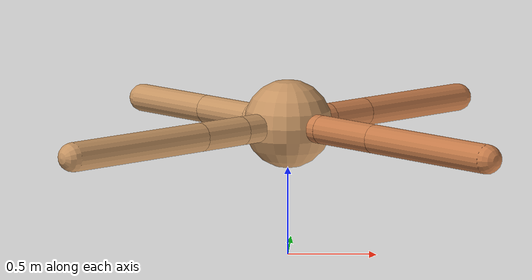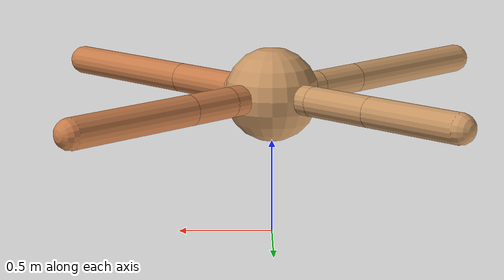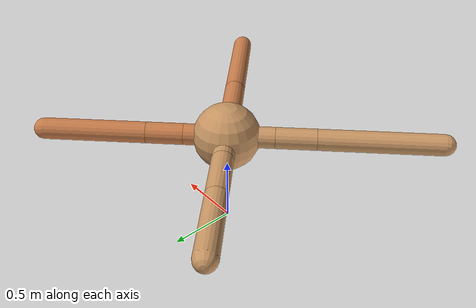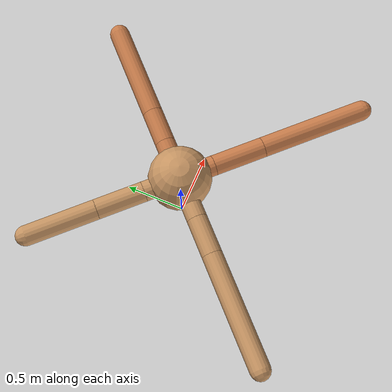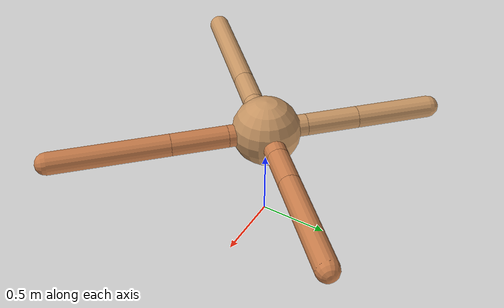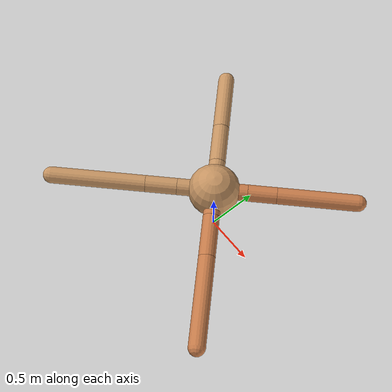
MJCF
<mujoco model="ant">
  <compiler angle="degree" coordinate="local" inertiafromgeom="true" />
  <option integrator="RK4" timestep="0.01" />
  <custom>
    <numeric data="0.0 0.0 0.55 1.0 0.0 0.0 0.0 0.0 1.0 0.0 -1.0 0.0 -1.0 0.0 1.0" name="init_qpos" />
  </custom>
  <default>
    <joint armature="1" damping="1" limited="true" />
    <geom conaffinity="0" condim="3" density="5.0" friction="1.5 0.1 0.1" margin="0.01" rgba="0.8 0.6 0.4 1" />
  </default>
  <worldbody>
    <body name="torso" pos="0 0 0.75">
      <geom name="torso_geom" pos="0 0 0" size="0.25" type="sphere" />

      <body name="front_left_leg" pos="0 0 0">
        <geom fromto="0.0 0.0 0.0 0.224364669741624 0.224364669741624 0.0" name="aux_1_geom" size="0.08" type="capsule" rgba=".8 .5 .3 1" />
        <body name="aux_1" pos="0.224364669741624 0.224364669741624 0.0">
          <joint axis="0 0 1" name="hip_1" pos="0.0 0.0 0.0" range="-40 40" type="hinge" />
          <geom fromto="0.0 0.0 0.0 0.19654843479353215 0.19654843479353215 0.0" name="left_leg_geom" size="0.08" type="capsule" rgba=".8 .5 .3 1" />
          <body pos="0.19654843479353215 0.19654843479353215 0.0" name="front_left_foot">
            <joint axis="-1 1 0" name="ankle_1" pos="0.0 0.0 0.0" range="30 100" type="hinge" />
            <geom fromto="0.0 0.0 0.0 0.5433694952088363 0.5433694952088363 0.0" name="left_ankle_geom" size="0.08" type="capsule" rgba=".8 .5 .3 1" />
          </body>
        </body>
      </body>
      <body name="front_right_leg" pos="0 0 0">
        <geom fromto="0.0 0.0 0.0 -0.21048478589986522 0.21048478589986522 0.0" name="aux_2_geom" size="0.08" type="capsule" />
        <body name="aux_2" pos="-0.21048478589986522 0.21048478589986522 0.0">
          <joint axis="0 0 1" name="hip_2" pos="0.0 0.0 0.0" range="-40 40" type="hinge" />
          <geom fromto="0.0 0.0 0.0 -0.27325955217762105 0.27325955217762105 0.0" name="right_leg_geom" size="0.08" type="capsule" />
          <body pos="-0.27325955217762105 0.27325955217762105 0.0" name="front_right_foot">
            <joint axis="1 1 0" name="ankle_2" pos="0.0 0.0 0.0" range="-100 -30" type="hinge" />
            <geom fromto="0.0 0.0 0.0 -0.3981611377812918 0.3981611377812918 0.0" name="right_ankle_geom" size="0.08" type="capsule" />
          </body>
        </body>
      </body>
      <body name="left_back_leg" pos="0 0 0">
        <geom fromto="0.0 0.0 0.0 -0.2504268139320693 -0.2504268139320693 0.0" name="aux_3_geom" size="0.08" type="capsule" />
        <body name="aux_3" pos="-0.2504268139320693 -0.2504268139320693 0.0">
          <joint axis="0 0 1" name="hip_3" pos="0.0 0.0 0.0" range="-40 40" type="hinge" />
          <geom fromto="0.0 0.0 0.0 -0.21479957379068393 -0.21479957379068393 0.0" name="back_leg_geom" size="0.08" type="capsule" />
          <body pos="-0.21479957379068393 -0.21479957379068393 0.0" name="left_back_foot">
            <joint axis="-1 1 0" name="ankle_3" pos="0.0 0.0 0.0" range="-100 -30" type="hinge" />
            <geom fromto="0.0 0.0 0.0 -0.6453160423036587 -0.6453160423036587 0.0" name="third_ankle_geom" size="0.08" type="capsule" />
          </body>
        </body>
      </body>
      <body name="right_back_leg" pos="0 0 0">
        <geom fromto="0.0 0.0 0.0 0.2 -0.2 0.0" name="aux_4_geom" size="0.08" type="capsule" rgba=".8 .5 .3 1" />
        <body name="aux_4" pos="0.2 -0.2 0.0">
          <joint axis="0 0 1" name="hip_4" pos="0.0 0.0 0.0" range="-40 40" type="hinge" />
          <geom fromto="0.0 0.0 0.0 0.2905781171571253 -0.2905781171571253 0.0" name="rightback_leg_geom" size="0.08" type="capsule" rgba=".8 .5 .3 1" />
          <body pos="0.2905781171571253 -0.2905781171571253 0.0" name="right_back_foot">
            <joint axis="1 1 0" name="ankle_4" pos="0.0 0.0 0.0" range="30 100" type="hinge" />
            <geom fromto="0.0 0.0 0.0 0.6045924778331511 -0.6045924778331511 0.0" name="fourth_ankle_geom" size="0.08" type="capsule" rgba=".8 .5 .3 1" />
          </body>
        </body>
      </body>
    </body>
  </worldbody>
  <actuator>
    <motor ctrllimited="true" ctrlrange="-1.0 1.0" joint="hip_4" gear="150" />
    <motor ctrllimited="true" ctrlrange="-1.0 1.0" joint="ankle_4" gear="150" />
    <motor ctrllimited="true" ctrlrange="-1.0 1.0" joint="hip_1" gear="150" />
    <motor ctrllimited="true" ctrlrange="-1.0 1.0" joint="ankle_1" gear="150" />
    <motor ctrllimited="true" ctrlrange="-1.0 1.0" joint="hip_2" gear="150" />
    <motor ctrllimited="true" ctrlrange="-1.0 1.0" joint="ankle_2" gear="150" />
    <motor ctrllimited="true" ctrlrange="-1.0 1.0" joint="hip_3" gear="150" />
    <motor ctrllimited="true" ctrlrange="-1.0 1.0" joint="ankle_3" gear="150" />
  </actuator>
</mujoco>
